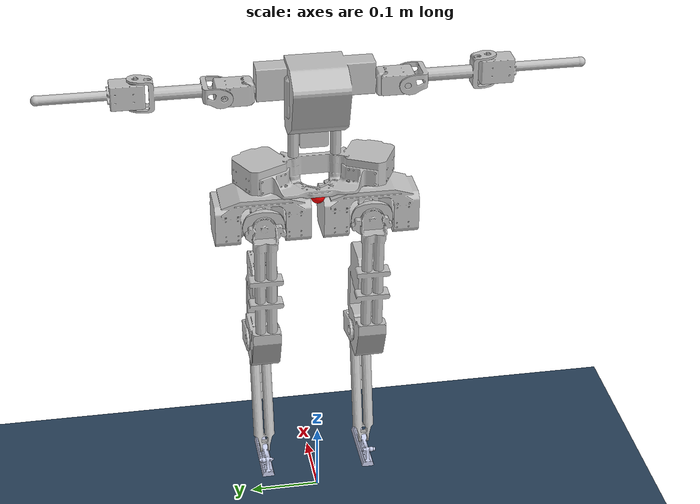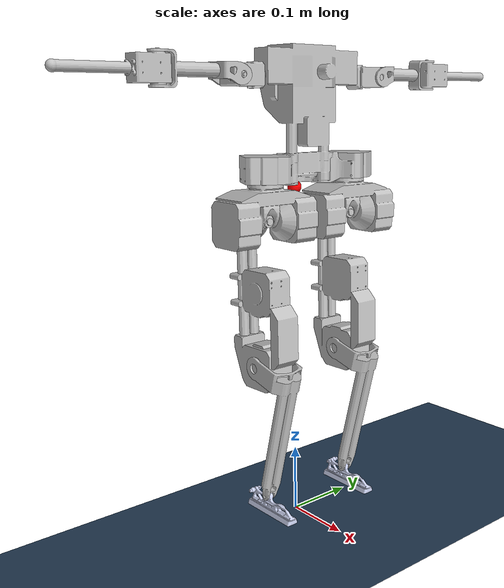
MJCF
<mujoco model="bruce">
  <compiler angle="radian" meshdir="./Simulation/models/bruce/meshes/"/>
  <option o_solimp="0.9 0.9 0.001 0.5 2" o_solref="0.005 2">
    <flag override="enable"/>
  </option>
  <asset>
    <mesh name="base_link" file="base_link.STL"/>
    <mesh name="hip_yaw_link_r" file="hip_yaw_link_r.STL"/>
    <mesh name="hip_roll_link_r" file="hip_roll_link_r.STL"/>
    <mesh name="hip_pitch_link_r" file="hip_pitch_link_r.STL"/>
    <mesh name="knee_pitch_link_r" file="knee_pitch_link_r.STL"/>
    <mesh name="ankle_pitch_link_r" file="ankle_pitch_link_r.STL"/>
    <mesh name="hip_yaw_link_l" file="hip_yaw_link_l.STL"/>
    <mesh name="hip_roll_link_l" file="hip_roll_link_l.STL"/>
    <mesh name="hip_pitch_link_l" file="hip_pitch_link_l.STL"/>
    <mesh name="knee_pitch_link_l" file="knee_pitch_link_l.STL"/>
    <mesh name="ankle_pitch_link_l" file="ankle_pitch_link_l.STL"/>
    <mesh name="shoulder_pitch_link_r" file="shoulder_pitch_link_r.STL"/>
    <mesh name="shoulder_roll_link_r" file="shoulder_roll_link_r.STL"/>
    <mesh name="elbow_pitch_link_r" file="elbow_pitch_link_r.STL"/>
    <mesh name="shoulder_pitch_link_l" file="shoulder_pitch_link_l.STL"/>
    <mesh name="shoulder_roll_link_l" file="shoulder_roll_link_l.STL"/>
    <mesh name="elbow_pitch_link_l" file="elbow_pitch_link_l.STL"/>
    <mesh name="cube" file="cube.obj"/>

    <texture type="skybox" builtin="gradient" rgb1=".3 .5 .7" rgb2="0 0 0" width="512" height="512"/>
    <texture name="body" type="cube" builtin="flat" mark="cross" width="127" height="1278"
             rgb1="0.8 0.6 0.4" rgb2="0.8 0.6 0.4" markrgb="1 1 1" random="0.01"/>
    <material name="body" texture="body" texuniform="true" rgba="0.8 0.6 .4 1"/>
    <texture name="grid" type="2d" builtin="checker" width="512" height="512" rgb1=".1 .2 .3" rgb2=".2 .3 .4"/>
    <material name="grid" texture="grid" texrepeat="1 1" texuniform="true" reflectance=".2"/>

  </asset>

  <visual>
    <map force="0.1" zfar="30"/>
    <rgba haze="0.15 0.25 0.35 1"/>
    <quality shadowsize="4096"/>
    <global offwidth="800" offheight="800"/>
  </visual>

  <contact>
    <exclude body1="bot_base" body2="hip_yaw_link_r"/>
    <exclude body1="bot_base" body2="hip_roll_link_r"/>
    <exclude body1="bot_base" body2="hip_yaw_link_l"/>
    <exclude body1="bot_base" body2="hip_roll_link_l"/>
    <exclude body1="hip_yaw_link_r" body2="hip_pitch_link_r"/>
    <exclude body1="hip_yaw_link_l" body2="hip_pitch_link_l"/>
    <exclude body1="shoulder_pitch_link_r" body2="shoulder_roll_link_r"/>
    <exclude body1="shoulder_roll_link_r" body2="elbow_pitch_link_r"/>
    <exclude body1="shoulder_pitch_link_l" body2="shoulder_roll_link_l"/>
    <exclude body1="shoulder_roll_link_l" body2="elbow_pitch_link_l"/>
    <exclude body1="bot_base" body2="shoulder_roll_link_r"/>
    <exclude body1="bot_base" body2="shoulder_pitch_link_r"/>
    <exclude body1="bot_base" body2="shoulder_roll_link_l"/>
    <exclude body1="bot_base" body2="shoulder_pitch_link_l"/>
    <exclude body1="bot_base" body2="knee_pitch_link_l"/>
    <exclude body1="bot_base" body2="knee_pitch_link_r"/>
  </contact>

  <actuator>
    <motor joint="hip_yaw_r"/>
    <motor joint="hip_roll_r"/>
    <motor joint="hip_pitch_r"/>
    <motor joint="knee_pitch_r"/>
    <motor joint="ankle_pitch_r"/>
    <motor joint="hip_yaw_l"/>
    <motor joint="hip_roll_l"/>
    <motor joint="hip_pitch_l"/>
    <motor joint="knee_pitch_l"/>
    <motor joint="ankle_pitch_l"/>
    <motor joint="shoulder_pitch_r"/>
    <motor joint="shoulder_roll_r"/>
    <motor joint="elbow_pitch_r"/>
    <motor joint="shoulder_pitch_l"/>
    <motor joint="shoulder_roll_l"/>
    <motor joint="elbow_pitch_l"/>
  </actuator>

  <worldbody>
    <geom name="floor" size="0 0 .05" type="plane" material="grid" condim="3" friction="2 1.0 0.0001"/>
    <light name="spotlight" mode="targetbodycom" target="bot_base"
           diffuse=".8 .8 .8" specular="0.3 0.3 0.3" pos="0 -20 4" cutoff="10"/>

    <!-- add geo here -->

    <body name="bot_base" pos="0 0 0.5">
      <site name="IMU_site" pos="0 0 0" size="0.01" rgba="1 0 0 1" quat="1 0 0 0"/>
      <inertial pos="0.022596 -0.00011305 0.0614005" quat="0.994116 -0.000933698 -0.108309 -0.00092819" mass="1.31689" diaginertia="0.0137572 0.0102363 0.00506804"/>
      <joint name="floating_base" type="free"/>
      <geom type="mesh" rgba="0.752941 0.752941 0.752941 1" mesh="base_link"/>
      <body name="hip_yaw_link_r" pos="0.029216 -0.0758557 -0.039765" quat="0.707107 0 0 -0.707107">
        <inertial pos="2.71e-06 -0.00024824 0.00522427" quat="0.517691 0.482114 0.518083 0.480784" mass="0.637563" diaginertia="0.0016174 0.00152078 0.000485406"/>
        <joint name="hip_yaw_r" pos="0 0 0" axis="0 0 1" range="-3.1415 3.1415"/>
        <geom type="mesh" rgba="0.752941 0.752941 0.752941 1" mesh="hip_yaw_link_r"/>
        <body name="hip_roll_link_r" quat="0.5 -0.5 0.5 0.5">
          <inertial pos="-1.51e-07 0 6.88e-06" mass="0.05" diaginertia="1e-05 1e-05 1e-05"/>
          <joint name="hip_roll_r" pos="0 0 0" axis="0 0 1" range="-3.1415 3.1415"/>
          <geom type="mesh" rgba="0.752941 0.752941 0.752941 1" mesh="hip_roll_link_r"/>
          <body name="hip_pitch_link_r" quat="0.707107 0.707107 0 0">
            <inertial pos="0.140714 -0.0086817 0.00167429" quat="-0.0210718 0.710934 0.00543456 0.702922" mass="0.72849" diaginertia="0.0181996 0.0179488 0.000479326"/>
            <joint name="hip_pitch_r" pos="0 0 0" axis="0 0 1" range="-3.1415 3.1415"/>
            <geom type="mesh" rgba="0.752941 0.752941 0.752941 1" mesh="hip_pitch_link_r"/>
            <body name="knee_pitch_link_r" pos="0.204949 0 0">
              <inertial pos="0.0729308 0.0174645 0.00216432" quat="-0.0124752 0.71085 -0.0538621 0.701167" mass="0.0956654" diaginertia="0.00108397 0.00102192 0.000106307"/>
              <joint name="knee_pitch_r" pos="0 0 0" axis="0 0 1" range="-3.1415 3.1415"/>
              <geom type="mesh" rgba="0.752941 0.752941 0.752941 1" mesh="knee_pitch_link_r"/>
              <body name="ankle_pitch_link_r" pos="0.199881 0 0">
                <inertial pos="0.0120775 0.0019746 0.00029511" quat="0.443128 0.545146 -0.456612 0.545855" mass="0.0276265" diaginertia="2.58838e-04 2.09859e-04 5.64035e-05"/>
                <joint name="ankle_pitch_r" pos="0 0 0" axis="0 0 1" range="-3.1415 3.1415"/>
                <geom type="mesh" rgba="0.792157 0.819608 0.933333 1" mesh="ankle_pitch_link_r" friction="1.0 1.0 0.0001"/>
              </body>
            </body>
          </body>
        </body>
      </body>
      <body name="hip_yaw_link_l" pos="0.029216 0.0758557 -0.039765" quat="0.707107 0 0 -0.707107">
        <inertial pos="0 -0.00020849 0.00528032" quat="0.518836 0.480432 0.518756 0.480506" mass="0.637386" diaginertia="0.00161868 0.00152047 0.0004852"/>
        <joint name="hip_yaw_l" pos="0 0 0" axis="0 0 1" range="-3.1415 3.1415"/>
        <geom type="mesh" rgba="0.752941 0.752941 0.752941 1" mesh="hip_yaw_link_l"/>
        <body name="hip_roll_link_l" quat="0.500001 -0.499999 0.500001 0.499999">
          <inertial pos="-1.51e-07 0 6.88e-06" mass="0.05" diaginertia="1e-05 1e-05 1e-05"/>
          <joint name="hip_roll_l" pos="0 0 0" axis="0 0 1" range="-3.1415 3.1415"/>
          <geom type="mesh" rgba="0.752941 0.752941 0.752941 1" mesh="hip_roll_link_l"/>
          <body name="hip_pitch_link_l" quat="0.707107 0.707107 0 0">
            <inertial pos="0.142447 -0.00832054 0.00049317" quat="-0.002203 0.702817 0.024599 0.710942" mass="0.720628" diaginertia="0.018195 0.0179541 0.000461885"/>
            <joint name="hip_pitch_l" pos="0 0 0" axis="0 0 1" range="-3.1415 3.1415"/>
            <geom type="mesh" rgba="0.752941 0.752941 0.752941 1" mesh="hip_pitch_link_l"/>
            <body name="knee_pitch_link_l" pos="0.204949 0 0">
              <inertial pos="0.0730996 0.0178102 -0.00219767" quat="0.0505999 0.70058 0.00930476 0.711716" mass="0.0952654" diaginertia="0.00107995 0.00101966 0.000104635"/>
              <joint name="knee_pitch_l" pos="0 0 0" axis="0 0 1" range="-3.1415 3.1415"/>
              <geom type="mesh" rgba="0.752941 0.752941 0.752941 1" mesh="knee_pitch_link_l"/>
              <body name="ankle_pitch_link_l" pos="0.199881 0 0">
                <inertial pos="0.0123398 0.00253004 -0.00030441" quat="0.455603 0.546571 -0.442281 0.545962" mass="0.0274829" diaginertia="2.60237e-04 2.09939e-04 5.69233e-05"/>
                <joint name="ankle_pitch_l" pos="0 0 0" axis="0 0 1" range="-3.1415 3.1415"/>
                <geom type="mesh" rgba="0.792157 0.819608 0.933333 1" mesh="ankle_pitch_link_l" friction="1.0 1.0 0.0001"/>
              </body>
            </body>
          </body>
        </body>
      </body>
      <body name="shoulder_pitch_link_r" pos="0.029216 -0.12375 0.152985" quat="0.5 0.5 -0.5 0.5">
        <inertial pos="0 -0.00038323 -0.0141368" quat="0.999984 0.0057278 0 0" mass="0.0493169" diaginertia="2.507e-05 2.40321e-05 8.31794e-06"/>
        <joint name="shoulder_pitch_r" pos="0 0 0" axis="0 0 1" range="-3.1415 3.1415"/>
        <geom type="mesh" rgba="0.752941 0.752941 0.752941 1" mesh="shoulder_pitch_link_r"/>
        <body name="shoulder_roll_link_r" quat="0.5 0.5 -0.5 0.5">
          <inertial pos="0.0570939 -0.00419463 0.00093738" quat="-0.205082 0.694437 -0.169487 0.66856" mass="0.024" diaginertia="0.000126403 0.000125807 7.29e-06"/>
          <joint name="shoulder_roll_r" pos="0 0 0" axis="0 0 1" range="-3.1415 3.1415"/>
          <geom type="mesh" rgba="0.752941 0.752941 0.752941 1" mesh="shoulder_roll_link_r"/>
          <body name="elbow_pitch_link_r" pos="0.1146 -0.005 0.005" quat="0.707107 0.707107 0 0">
            <inertial pos="0.0217884 0 0.0003604" quat="0.499291 0.500708 0.500708 0.499291" mass="0.0524404" diaginertia="7.261e-05 7.10305e-05 7.52949e-06"/>
            <joint name="elbow_pitch_r" pos="0 0 0" axis="0 0 1" range="-3.1415 3.1415"/>
            <geom type="mesh" rgba="0.752941 0.752941 0.752941 1" mesh="elbow_pitch_link_r"/>
          </body>
        </body>
      </body>
      <body name="shoulder_pitch_link_l" pos="0.029216 0.12375 0.152985" quat="0.5 -0.5 0.5 0.5">
        <inertial pos="0 0.00038323 -0.0141368" quat="0.999984 -0.0057278 0 0" mass="0.0493169" diaginertia="2.507e-05 2.40321e-05 8.31794e-06"/>
        <joint name="shoulder_pitch_l" pos="0 0 0" axis="0 0 1" range="-3.1415 3.1415"/>
        <geom type="mesh" rgba="0.752941 0.752941 0.752941 1" mesh="shoulder_pitch_link_l"/>
        <body name="shoulder_roll_link_l" quat="0.5 0.5 -0.5 0.5">
          <inertial pos="0.0570939 0.00419463 0.00094155" quat="0.207025 0.693936 0.171489 0.667971" mass="0.0313652" diaginertia="0.000165195 0.000164406 9.52871e-06"/>
          <joint name="shoulder_roll_l" pos="0 0 0" axis="0 0 1" range="-3.1415 3.1415"/>
          <geom type="mesh" rgba="0.752941 0.752941 0.752941 1" mesh="shoulder_roll_link_l"/>
          <body name="elbow_pitch_link_l" pos="0.1146 0.005 0.005" quat="0.707107 -0.707107 0 0">
            <inertial pos="0.0217884 0 0.0003604" quat="0.499291 0.500708 0.500708 0.499291" mass="0.0524404" diaginertia="7.261e-05 7.10305e-05 7.52949e-06"/>
            <joint name="elbow_pitch_l" pos="0 0 0" axis="0 0 1" range="-3.1415 3.1415"/>
            <geom type="mesh" rgba="0.752941 0.752941 0.752941 1" mesh="elbow_pitch_link_l"/>
          </body>
        </body>
      </body>
    </body>

  </worldbody>

  <sensor>
    <accelerometer name="accelerometer" site="IMU_site" noise="0.02"/>
  </sensor>

</mujoco>
